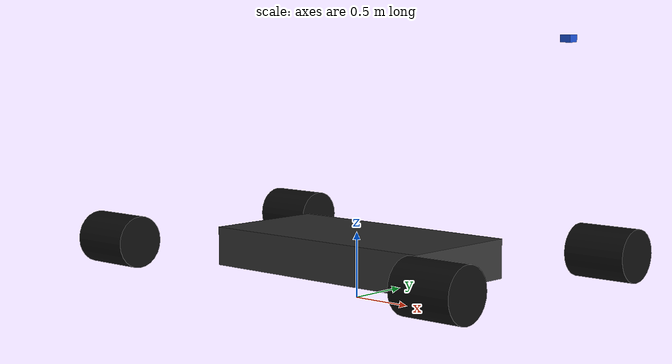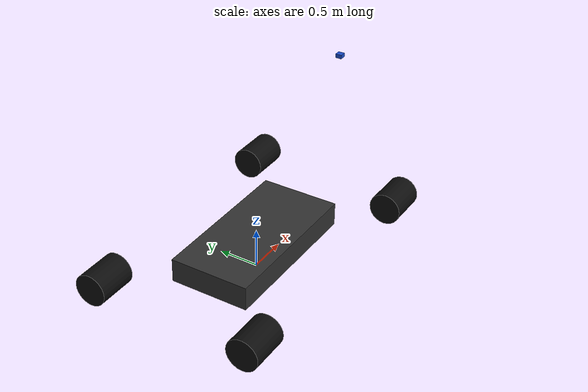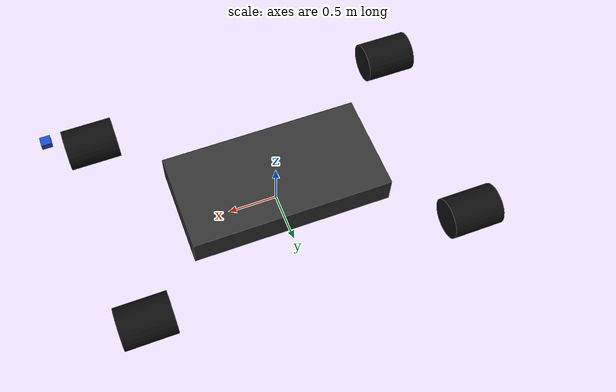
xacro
<?xml version="1.0"?>
<robot xmlns:xacro="http://ros.org/wiki/xacro" name="revo_ugv">
  <!-- Basic geometry properties (meters) -->
  <xacro:property name="chassis_length" value="2.0"/>
  <xacro:property name="chassis_width" value="1.0"/>
  <xacro:property name="chassis_height" value="0.3"/>
  <xacro:property name="wheel_radius" value="0.2"/>
  <xacro:property name="wheel_width" value="0.5"/> <!-- Given wheel width -->

  <!-- Mass/inertia placeholders to keep robot_state_publisher happy -->
  <xacro:macro name="default_inertial" params="mass ixx iyy izz ixy iyz ixz">
    <inertial>
      <mass value="${mass}"/>
      <inertia ixx="${ixx}" ixy="${ixy}" ixz="${ixz}" iyy="${iyy}" iyz="${iyz}" izz="${izz}"/>
    </inertial>
  </xacro:macro>

  <link name="base_link">
    <visual>
      <origin xyz="0 0 ${wheel_radius + chassis_height * 0.5}" rpy="0 0 0"/>
      <geometry>
        <box size="${chassis_length} ${chassis_width} ${chassis_height}"/>
      </geometry>
      <material name="dark_gray">
        <color rgba="0.2 0.2 0.2 1.0"/>
      </material>
    </visual>
    <collision>
      <origin xyz="0 0 ${wheel_radius + chassis_height * 0.5}" rpy="0 0 0"/>
      <geometry>
        <box size="${chassis_length} ${chassis_width} ${chassis_height}"/>
      </geometry>
    </collision>
    <xacro:default_inertial mass="40.0" ixx="1.0" iyy="1.0" izz="1.0" ixy="0.0" iyz="0.0" ixz="0.0"/>
  </link>

  <!-- Wheel macro -->
  <xacro:macro name="wheel" params="name x y">
    <link name="${name}">
      <visual>
        <origin xyz="${x} ${y} ${wheel_radius}" rpy="0 1.5708 0"/>
        <geometry>
          <cylinder radius="${wheel_radius}" length="${wheel_width}"/>
        </geometry>
        <material name="black">
          <color rgba="0.05 0.05 0.05 1.0"/>
        </material>
      </visual>
      <collision>
        <origin xyz="${x} ${y} ${wheel_radius}" rpy="0 1.5708 0"/>
        <geometry>
          <cylinder radius="${wheel_radius}" length="${wheel_width}"/>
        </geometry>
      </collision>
      <xacro:default_inertial mass="5.0" ixx="0.1" iyy="0.1" izz="0.1" ixy="0.0" iyz="0.0" ixz="0.0"/>
    </link>
    <joint name="${name}_joint" type="continuous">
      <parent link="base_link"/>
      <child link="${name}"/>
      <origin xyz="${x} ${y} ${wheel_radius}" rpy="0 0 0"/>
      <axis xyz="0 1 0"/>
    </joint>
  </xacro:macro>

  <!-- Wheel positions: front/back along the 2.0 m length, centered in width.
       Using a small margin (0.2 m) from the ends. -->
  <xacro:property name="wheel_offset_x" value="${chassis_length * 0.5 - 0.2}"/>
  <xacro:property name="wheel_offset_y" value="${chassis_width * 0.5}"/>

  <xacro:wheel name="front_left_wheel" x="${wheel_offset_x}" y="${wheel_offset_y}"/>
  <xacro:wheel name="front_right_wheel" x="${wheel_offset_x}" y="-${wheel_offset_y}"/>
  <xacro:wheel name="rear_left_wheel" x="-${wheel_offset_x}" y="${wheel_offset_y}"/>
  <xacro:wheel name="rear_right_wheel" x="-${wheel_offset_x}" y="-${wheel_offset_y}"/>

  <!-- Camera link: mounted at the front, 0.5 m above chassis top -->
  <link name="camera_link">
    <visual>
      <origin xyz="${chassis_length * 0.5 - 0.05} 0 ${wheel_radius + chassis_height + 0.5}" rpy="0 0 0"/>
      <geometry>
        <box size="0.08 0.08 0.05"/>
      </geometry>
      <material name="blue">
        <color rgba="0.1 0.3 0.8 1.0"/>
      </material>
    </visual>
    <collision>
      <origin xyz="${chassis_length * 0.5 - 0.05} 0 ${wheel_radius + chassis_height + 0.5}" rpy="0 0 0"/>
      <geometry>
        <box size="0.08 0.08 0.05"/>
      </geometry>
    </collision>
    <xacro:default_inertial mass="0.5" ixx="0.01" iyy="0.01" izz="0.01" ixy="0.0" iyz="0.0" ixz="0.0"/>
  </link>

  <joint name="camera_mount_joint" type="fixed">
    <parent link="base_link"/>
    <child link="camera_link"/>
    <origin xyz="${chassis_length * 0.5 - 0.05} 0 ${wheel_radius + chassis_height + 0.5}" rpy="0 0 0"/>
  </joint>

  <!-- ros2_control: generic system placeholder. Replace plugin with a hardware interface that talks to Revo SDK if desired. -->
  <ros2_control name="revo_ugv_control" type="system">
    <hardware>
      <!-- 使用 fake_components/GenericSystem 以便在无硬件接口时仍可加载控制器 -->
      <plugin>fake_components/GenericSystem</plugin>
      <param name="command_interfaces">["velocity"]</param>
      <param name="state_interfaces">["position", "velocity"]</param>
    </hardware>
    <joint name="front_left_wheel_joint">
      <command_interface name="velocity"/>
      <state_interface name="position"/>
      <state_interface name="velocity"/>
    </joint>
    <joint name="front_right_wheel_joint">
      <command_interface name="velocity"/>
      <state_interface name="position"/>
      <state_interface name="velocity"/>
    </joint>
    <joint name="rear_left_wheel_joint">
      <command_interface name="velocity"/>
      <state_interface name="position"/>
      <state_interface name="velocity"/>
    </joint>
    <joint name="rear_right_wheel_joint">
      <command_interface name="velocity"/>
      <state_interface name="position"/>
      <state_interface name="velocity"/>
    </joint>
  </ros2_control>

  <!-- Transmissions to satisfy diff_drive_controller -->
  <transmission name="front_left_wheel_trans">
    <type>transmission_interface/SimpleTransmission</type>
    <joint name="front_left_wheel_joint">
      <hardwareInterface>hardware_interface/VelocityJointInterface</hardwareInterface>
    </joint>
    <actuator name="front_left_wheel_motor">
      <mechanicalReduction>1</mechanicalReduction>
    </actuator>
  </transmission>
  <transmission name="front_right_wheel_trans">
    <type>transmission_interface/SimpleTransmission</type>
    <joint name="front_right_wheel_joint">
      <hardwareInterface>hardware_interface/VelocityJointInterface</hardwareInterface>
    </joint>
    <actuator name="front_right_wheel_motor">
      <mechanicalReduction>1</mechanicalReduction>
    </actuator>
  </transmission>
  <transmission name="rear_left_wheel_trans">
    <type>transmission_interface/SimpleTransmission</type>
    <joint name="rear_left_wheel_joint">
      <hardwareInterface>hardware_interface/VelocityJointInterface</hardwareInterface>
    </joint>
    <actuator name="rear_left_wheel_motor">
      <mechanicalReduction>1</mechanicalReduction>
    </actuator>
  </transmission>
  <transmission name="rear_right_wheel_trans">
    <type>transmission_interface/SimpleTransmission</type>
    <joint name="rear_right_wheel_joint">
      <hardwareInterface>hardware_interface/VelocityJointInterface</hardwareInterface>
    </joint>
    <actuator name="rear_right_wheel_motor">
      <mechanicalReduction>1</mechanicalReduction>
    </actuator>
  </transmission>
</robot>
